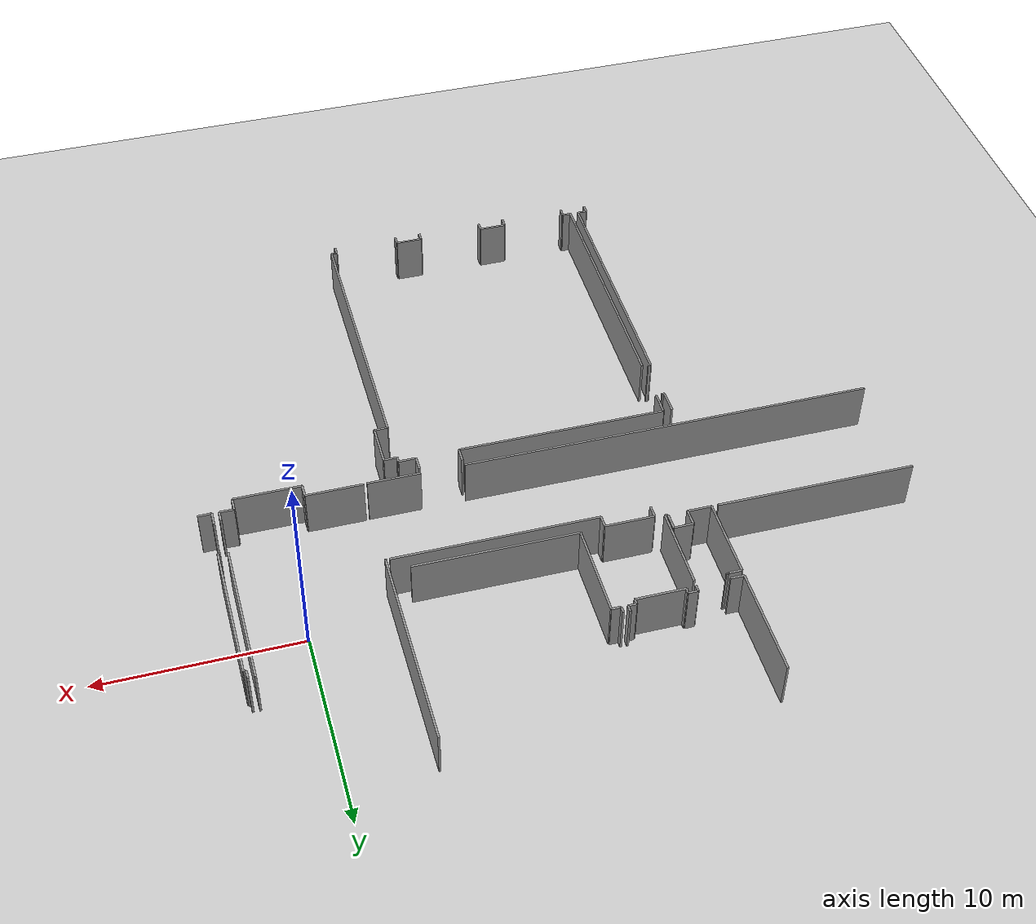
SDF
<sdf version="1.6">
 <world name="default">
  <model name="ground_plane">
   <static>1</static>
   <link name="link">
    <collision name="collision">
     <geometry><plane><normal>0 0 1</normal><size>100 100</size></plane></geometry>
     <surface><friction><ode><mu>100</mu><mu2>50</mu2></ode></friction></surface>
    </collision>
    <visual name="visual">
     <cast_shadows>0</cast_shadows>
     <geometry><plane><normal>0 0 1</normal><size>100 100</size></plane></geometry>
     <material>
      <script><uri>file://media/materials/scripts/gazebo.material</uri><name>Gazebo/Grey</name></script>
     </material>
    </visual>
   </link>
  </model>
  <model name="0510032196_A_40_1_104">
   <static>1</static>
   <link name="Wall_181">
    <collision name="Wall_181_Collision">
     <geometry><box><size>0.696329622287 0.1 2.5</size></box></geometry>
     <pose>0.348164811143 0 1.25 0 0 0</pose>
    </collision>
    <visual name="Wall_181_Visual">
     <pose>0.348164811143 0 1.25 0 0 0</pose>
     <geometry><box><size>0.696329622287 0.1 2.5</size></box></geometry>
     <material>
      <script><uri>file://media/materials/scripts/gazebo.material</uri><name>Gazebo/Grey</name></script>
      <ambient>1 1 1 1</ambient>
     </material>
    </visual>
    <pose>68.592979513 -30.8386711403 0 0 0 1.57079632679</pose>
   </link>
   <link name="Wall_182">
    <collision name="Wall_182_Collision">
     <geometry><box><size>0.120100655788 0.1 2.5</size></box></geometry>
     <pose>0.0600503278939 0 1.25 0 0 0</pose>
    </collision>
    <visual name="Wall_182_Visual">
     <pose>0.0600503278939 0 1.25 0 0 0</pose>
     <geometry><box><size>0.120100655788 0.1 2.5</size></box></geometry>
     <material>
      <script><uri>file://media/materials/scripts/gazebo.material</uri><name>Gazebo/Grey</name></script>
      <ambient>1 1 1 1</ambient>
     </material>
    </visual>
    <pose>68.592979513 -28.2883432464 0 0 0 0.0</pose>
   </link>
   <link name="Wall_183">
    <collision name="Wall_183_Collision">
     <geometry><box><size>6.95389151543 0.1 2.5</size></box></geometry>
     <pose>3.47694575771 0 1.25 0 0 0</pose>
    </collision>
    <visual name="Wall_183_Visual">
     <pose>3.47694575771 0 1.25 0 0 0</pose>
     <geometry><box><size>6.95389151543 0.1 2.5</size></box></geometry>
     <material>
      <script><uri>file://media/materials/scripts/gazebo.material</uri><name>Gazebo/Grey</name></script>
      <ambient>1 1 1 1</ambient>
     </material>
    </visual>
    <pose>68.7130801688 -28.2883432464 0 0 0 1.57079632679</pose>
   </link>
   <link name="Wall_184">
    <collision name="Wall_184_Collision">
     <geometry><box><size>0.131157541559 0.1 2.5</size></box></geometry>
     <pose>0.0655787707793 0 1.25 0 0 0</pose>
    </collision>
    <visual name="Wall_184_Visual">
     <pose>0.0655787707793 0 1.25 0 0 0</pose>
     <geometry><box><size>0.131157541559 0.1 2.5</size></box></geometry>
     <material>
      <script><uri>file://media/materials/scripts/gazebo.material</uri><name>Gazebo/Grey</name></script>
      <ambient>1 1 1 1</ambient>
     </material>
    </visual>
    <pose>68.7130801688 -21.334451731 0 0 0 3.14159265359</pose>
   </link>
   <link name="Wall_185">
    <collision name="Wall_185_Collision">
     <geometry><box><size>0.419907478013 0.1 2.5</size></box></geometry>
     <pose>0.209953739007 0 1.25 0 0 0</pose>
    </collision>
    <visual name="Wall_185_Visual">
     <pose>0.209953739007 0 1.25 0 0 0</pose>
     <geometry><box><size>0.419907478013 0.1 2.5</size></box></geometry>
     <material>
      <script><uri>file://media/materials/scripts/gazebo.material</uri><name>Gazebo/Grey</name></script>
      <ambient>1 1 1 1</ambient>
     </material>
    </visual>
    <pose>68.5819226272 -21.334451731 0 0 0 1.57079632679</pose>
   </link>
   <link name="Wall_200">
    <collision name="Wall_200_Collision">
     <geometry><box><size>0.680181179536 0.1 2.5</size></box></geometry>
     <pose>0.340090589768 0 1.25 0 0 0</pose>
    </collision>
    <visual name="Wall_200_Visual">
     <pose>0.340090589768 0 1.25 0 0 0</pose>
     <geometry><box><size>0.680181179536 0.1 2.5</size></box></geometry>
     <material>
      <script><uri>file://media/materials/scripts/gazebo.material</uri><name>Gazebo/Grey</name></script>
      <ambient>1 1 1 1</ambient>
     </material>
    </visual>
    <pose>69.2729144426 -30.8203700879 0 0 0 -3.11468326279</pose>
   </link>
   <link name="Wall_201">
    <collision name="Wall_201_Collision">
     <geometry><box><size>4.71391896701 0.1 2.5</size></box></geometry>
     <pose>2.3569594835 0 1.25 0 0 0</pose>
    </collision>
    <visual name="Wall_201_Visual">
     <pose>2.3569594835 0 1.25 0 0 0</pose>
     <geometry><box><size>4.71391896701 0.1 2.5</size></box></geometry>
     <material>
      <script><uri>file://media/materials/scripts/gazebo.material</uri><name>Gazebo/Grey</name></script>
      <ambient>1 1 1 1</ambient>
     </material>
    </visual>
    <pose>52.3354176198 -25.2558334604 0 0 0 1.57079632679</pose>
   </link>
   <link name="Wall_202">
    <collision name="Wall_202_Collision">
     <geometry><box><size>0.464643383661 0.1 2.5</size></box></geometry>
     <pose>0.232321691831 0 1.25 0 0 0</pose>
    </collision>
    <visual name="Wall_202_Visual">
     <pose>0.232321691831 0 1.25 0 0 0</pose>
     <geometry><box><size>0.464643383661 0.1 2.5</size></box></geometry>
     <material>
      <script><uri>file://media/materials/scripts/gazebo.material</uri><name>Gazebo/Grey</name></script>
      <ambient>1 1 1 1</ambient>
     </material>
    </visual>
    <pose>52.3354176198 -20.5419144934 0 0 0 3.14159265359</pose>
   </link>
   <link name="Wall_203">
    <collision name="Wall_203_Collision">
     <geometry><box><size>0.317472421331 0.1 2.5</size></box></geometry>
     <pose>0.158736210665 0 1.25 0 0 0</pose>
    </collision>
    <visual name="Wall_203_Visual">
     <pose>0.158736210665 0 1.25 0 0 0</pose>
     <geometry><box><size>0.317472421331 0.1 2.5</size></box></geometry>
     <material>
      <script><uri>file://media/materials/scripts/gazebo.material</uri><name>Gazebo/Grey</name></script>
      <ambient>1 1 1 1</ambient>
     </material>
    </visual>
    <pose>51.8707742362 -20.5419144934 0 0 0 1.57079632679</pose>
   </link>
   <link name="Wall_211">
    <collision name="Wall_211_Collision">
     <geometry><box><size>8.0505723314 0.1 2.5</size></box></geometry>
     <pose>4.0252861657 0 1.25 0 0 0</pose>
    </collision>
    <visual name="Wall_211_Visual">
     <pose>4.0252861657 0 1.25 0 0 0</pose>
     <geometry><box><size>8.0505723314 0.1 2.5</size></box></geometry>
     <material>
      <script><uri>file://media/materials/scripts/gazebo.material</uri><name>Gazebo/Grey</name></script>
      <ambient>1 1 1 1</ambient>
     </material>
    </visual>
    <pose>60.3859742769 -25.2717197906 0 0 0 3.13961933545</pose>
   </link>
   <link name="Wall_212">
    <collision name="Wall_212_Collision">
     <geometry><box><size>5.4279141884 0.1 2.5</size></box></geometry>
     <pose>2.7139570942 0 1.25 0 0 0</pose>
    </collision>
    <visual name="Wall_212_Visual">
     <pose>2.7139570942 0 1.25 0 0 0</pose>
     <geometry><box><size>5.4279141884 0.1 2.5</size></box></geometry>
     <material>
      <script><uri>file://media/materials/scripts/gazebo.material</uri><name>Gazebo/Grey</name></script>
      <ambient>1 1 1 1</ambient>
     </material>
    </visual>
    <pose>45.9447918255 -20.8640892685 0 0 0 1.57079632679</pose>
   </link>
   <link name="Wall_216">
    <collision name="Wall_216_Collision">
     <geometry><box><size>0.328529307102 0.1 2.5</size></box></geometry>
     <pose>0.164264653551 0 1.25 0 0 0</pose>
    </collision>
    <visual name="Wall_216_Visual">
     <pose>0.164264653551 0 1.25 0 0 0</pose>
     <geometry><box><size>0.328529307102 0.1 2.5</size></box></geometry>
     <material>
      <script><uri>file://media/materials/scripts/gazebo.material</uri><name>Gazebo/Grey</name></script>
      <ambient>1 1 1 1</ambient>
     </material>
    </visual>
    <pose>51.5517767272 -20.1982614 0 0 0 -1.57079632679</pose>
   </link>
   <link name="Wall_217">
    <collision name="Wall_217_Collision">
     <geometry><box><size>0.398302069036 0.1 2.5</size></box></geometry>
     <pose>0.199151034518 0 1.25 0 0 0</pose>
    </collision>
    <visual name="Wall_217_Visual">
     <pose>0.199151034518 0 1.25 0 0 0</pose>
     <geometry><box><size>0.398302069036 0.1 2.5</size></box></geometry>
     <material>
      <script><uri>file://media/materials/scripts/gazebo.material</uri><name>Gazebo/Grey</name></script>
      <ambient>1 1 1 1</ambient>
     </material>
    </visual>
    <pose>51.5517767272 -20.5267907071 0 0 0 3.14159265359</pose>
   </link>
   <link name="Wall_218">
    <collision name="Wall_218_Collision">
     <geometry><box><size>0.00355853794926 0.1 2.5</size></box></geometry>
     <pose>0.00177926897463 0 1.25 0 0 0</pose>
    </collision>
    <visual name="Wall_218_Visual">
     <pose>0.00177926897463 0 1.25 0 0 0</pose>
     <geometry><box><size>0.00355853794926 0.1 2.5</size></box></geometry>
     <material>
      <script><uri>file://media/materials/scripts/gazebo.material</uri><name>Gazebo/Grey</name></script>
      <ambient>1 1 1 1</ambient>
     </material>
    </visual>
    <pose>51.1534746581 -20.5267907071 0 0 0 3.14159265359</pose>
   </link>
   <link name="Wall_219">
    <collision name="Wall_219_Collision">
     <geometry><box><size>0.279853591582 0.1 2.5</size></box></geometry>
     <pose>0.139926795791 0 1.25 0 0 0</pose>
    </collision>
    <visual name="Wall_219_Visual">
     <pose>0.139926795791 0 1.25 0 0 0</pose>
     <geometry><box><size>0.279853591582 0.1 2.5</size></box></geometry>
     <material>
      <script><uri>file://media/materials/scripts/gazebo.material</uri><name>Gazebo/Grey</name></script>
      <ambient>1 1 1 1</ambient>
     </material>
    </visual>
    <pose>51.1499161202 -20.5267907071 0 0 0 -1.57079632679</pose>
   </link>
   <link name="Wall_220">
    <collision name="Wall_220_Collision">
     <geometry><box><size>2.42361852473 0.1 2.5</size></box></geometry>
     <pose>1.21180926237 0 1.25 0 0 0</pose>
    </collision>
    <visual name="Wall_220_Visual">
     <pose>1.21180926237 0 1.25 0 0 0</pose>
     <geometry><box><size>2.42361852473 0.1 2.5</size></box></geometry>
     <material>
      <script><uri>file://media/materials/scripts/gazebo.material</uri><name>Gazebo/Grey</name></script>
      <ambient>1 1 1 1</ambient>
     </material>
    </visual>
    <pose>51.1499161202 -20.8066442987 0 0 0 3.14159265359</pose>
   </link>
   <link name="Wall_221">
    <collision name="Wall_221_Collision">
     <geometry><box><size>0.261933811194 0.1 2.5</size></box></geometry>
     <pose>0.130966905597 0 1.25 0 0 0</pose>
    </collision>
    <visual name="Wall_221_Visual">
     <pose>0.130966905597 0 1.25 0 0 0</pose>
     <geometry><box><size>0.261933811194 0.1 2.5</size></box></geometry>
     <material>
      <script><uri>file://media/materials/scripts/gazebo.material</uri><name>Gazebo/Grey</name></script>
      <ambient>1 1 1 1</ambient>
     </material>
    </visual>
    <pose>48.7262975954 -20.8066442987 0 0 0 1.57079632679</pose>
   </link>
   <link name="Wall_222">
    <collision name="Wall_222_Collision">
     <geometry><box><size>0.472650094047 0.1 2.5</size></box></geometry>
     <pose>0.236325047024 0 1.25 0 0 0</pose>
    </collision>
    <visual name="Wall_222_Visual">
     <pose>0.236325047024 0 1.25 0 0 0</pose>
     <geometry><box><size>0.472650094047 0.1 2.5</size></box></geometry>
     <material>
      <script><uri>file://media/materials/scripts/gazebo.material</uri><name>Gazebo/Grey</name></script>
      <ambient>1 1 1 1</ambient>
     </material>
    </visual>
    <pose>48.7262975954 -20.5447104875 0 0 0 3.14159265359</pose>
   </link>
   <link name="Wall_223">
    <collision name="Wall_223_Collision">
     <geometry><box><size>0.318997509023 0.1 2.5</size></box></geometry>
     <pose>0.159498754512 0 1.25 0 0 0</pose>
    </collision>
    <visual name="Wall_223_Visual">
     <pose>0.159498754512 0 1.25 0 0 0</pose>
     <geometry><box><size>0.318997509023 0.1 2.5</size></box></geometry>
     <material>
      <script><uri>file://media/materials/scripts/gazebo.material</uri><name>Gazebo/Grey</name></script>
      <ambient>1 1 1 1</ambient>
     </material>
    </visual>
    <pose>48.2536475014 -20.5447104875 0 0 0 -1.57079632679</pose>
   </link>
   <link name="Wall_224">
    <collision name="Wall_224_Collision">
     <geometry><box><size>0.659219265359 0.1 2.5</size></box></geometry>
     <pose>0.32960963268 0 1.25 0 0 0</pose>
    </collision>
    <visual name="Wall_224_Visual">
     <pose>0.32960963268 0 1.25 0 0 0</pose>
     <geometry><box><size>0.659219265359 0.1 2.5</size></box></geometry>
     <material>
      <script><uri>file://media/materials/scripts/gazebo.material</uri><name>Gazebo/Grey</name></script>
      <ambient>1 1 1 1</ambient>
     </material>
    </visual>
    <pose>46.6040109806 -20.8637079965 0 0 0 -3.14101428465</pose>
   </link>
   <link name="Wall_225">
    <collision name="Wall_225_Collision">
     <geometry><box><size>4.07287377358 0.1 2.5</size></box></geometry>
     <pose>2.03643688679 0 1.25 0 0 0</pose>
    </collision>
    <visual name="Wall_225_Visual">
     <pose>2.03643688679 0 1.25 0 0 0</pose>
     <geometry><box><size>4.07287377358 0.1 2.5</size></box></geometry>
     <material>
      <script><uri>file://media/materials/scripts/gazebo.material</uri><name>Gazebo/Grey</name></script>
      <ambient>1 1 1 1</ambient>
     </material>
    </visual>
    <pose>45.9342433023 -25.259519089 0 0 0 1.57079632679</pose>
   </link>
   <link name="Wall_226">
    <collision name="Wall_226_Collision">
     <geometry><box><size>0.671801128565 0.1 2.5</size></box></geometry>
     <pose>0.335900564282 0 1.25 0 0 0</pose>
    </collision>
    <visual name="Wall_226_Visual">
     <pose>0.335900564282 0 1.25 0 0 0</pose>
     <geometry><box><size>0.671801128565 0.1 2.5</size></box></geometry>
     <material>
      <script><uri>file://media/materials/scripts/gazebo.material</uri><name>Gazebo/Grey</name></script>
      <ambient>1 1 1 1</ambient>
     </material>
    </visual>
    <pose>45.9342433023 -21.1866453154 0 0 0 0.0</pose>
   </link>
   <link name="Wall_227">
    <collision name="Wall_227_Collision">
     <geometry><box><size>0.0303746632098 0.1 2.5</size></box></geometry>
     <pose>0.0151873316049 0 1.25 0 0 0</pose>
    </collision>
    <visual name="Wall_227_Visual">
     <pose>0.0151873316049 0 1.25 0 0 0</pose>
     <geometry><box><size>0.0303746632098 0.1 2.5</size></box></geometry>
     <material>
      <script><uri>file://media/materials/scripts/gazebo.material</uri><name>Gazebo/Grey</name></script>
      <ambient>1 1 1 1</ambient>
     </material>
    </visual>
    <pose>46.6060444309 -21.1866453154 0 0 0 1.57079632679</pose>
   </link>
   <link name="Wall_228">
    <collision name="Wall_228_Collision">
     <geometry><box><size>0.0913781709115 0.1 2.5</size></box></geometry>
     <pose>0.0456890854557 0 1.25 0 0 0</pose>
    </collision>
    <visual name="Wall_228_Visual">
     <pose>0.0456890854557 0 1.25 0 0 0</pose>
     <geometry><box><size>0.0913781709115 0.1 2.5</size></box></geometry>
     <material>
      <script><uri>file://media/materials/scripts/gazebo.material</uri><name>Gazebo/Grey</name></script>
      <ambient>1 1 1 1</ambient>
     </material>
    </visual>
    <pose>46.6060444309 -21.1562706522 0 0 0 0.0</pose>
   </link>
   <link name="Wall_229">
    <collision name="Wall_229_Collision">
     <geometry><box><size>4.1094758782 0.1 2.5</size></box></geometry>
     <pose>2.0547379391 0 1.25 0 0 0</pose>
    </collision>
    <visual name="Wall_229_Visual">
     <pose>2.0547379391 0 1.25 0 0 0</pose>
     <geometry><box><size>4.1094758782 0.1 2.5</size></box></geometry>
     <material>
      <script><uri>file://media/materials/scripts/gazebo.material</uri><name>Gazebo/Grey</name></script>
      <ambient>1 1 1 1</ambient>
     </material>
    </visual>
    <pose>48.2292460983 -21.1562706522 0 0 0 -1.57079632679</pose>
   </link>
   <link name="Wall_230">
    <collision name="Wall_230_Collision">
     <geometry><box><size>0.146662599766 0.1 2.5</size></box></geometry>
     <pose>0.0733312998831 0 1.25 0 0 0</pose>
    </collision>
    <visual name="Wall_230_Visual">
     <pose>0.0733312998831 0 1.25 0 0 0</pose>
     <geometry><box><size>0.146662599766 0.1 2.5</size></box></geometry>
     <material>
      <script><uri>file://media/materials/scripts/gazebo.material</uri><name>Gazebo/Grey</name></script>
      <ambient>1 1 1 1</ambient>
     </material>
    </visual>
    <pose>48.2292460983 -25.2657465304 0 0 0 3.14159265359</pose>
   </link>
   <link name="Wall_231">
    <collision name="Wall_231_Collision">
     <geometry><box><size>0.827741345127 0.1 2.5</size></box></geometry>
     <pose>0.413870672564 0 1.25 0 0 0</pose>
    </collision>
    <visual name="Wall_231_Visual">
     <pose>0.413870672564 0 1.25 0 0 0</pose>
     <geometry><box><size>0.827741345127 0.1 2.5</size></box></geometry>
     <material>
      <script><uri>file://media/materials/scripts/gazebo.material</uri><name>Gazebo/Grey</name></script>
      <ambient>1 1 1 1</ambient>
     </material>
    </visual>
    <pose>48.0825834986 -25.2657465304 0 0 0 1.57079632679</pose>
   </link>
   <link name="Wall_232">
    <collision name="Wall_232_Collision">
     <geometry><box><size>0.960423974379 0.1 2.5</size></box></geometry>
     <pose>0.480211987189 0 1.25 0 0 0</pose>
    </collision>
    <visual name="Wall_232_Visual">
     <pose>0.480211987189 0 1.25 0 0 0</pose>
     <geometry><box><size>0.960423974379 0.1 2.5</size></box></geometry>
     <material>
      <script><uri>file://media/materials/scripts/gazebo.material</uri><name>Gazebo/Grey</name></script>
      <ambient>1 1 1 1</ambient>
     </material>
    </visual>
    <pose>48.0825834986 -24.4380051853 0 0 0 3.14159265359</pose>
   </link>
   <link name="Wall_233">
    <collision name="Wall_233_Collision">
     <geometry><box><size>0.827741345127 0.1 2.5</size></box></geometry>
     <pose>0.413870672564 0 1.25 0 0 0</pose>
    </collision>
    <visual name="Wall_233_Visual">
     <pose>0.413870672564 0 1.25 0 0 0</pose>
     <geometry><box><size>0.827741345127 0.1 2.5</size></box></geometry>
     <material>
      <script><uri>file://media/materials/scripts/gazebo.material</uri><name>Gazebo/Grey</name></script>
      <ambient>1 1 1 1</ambient>
     </material>
    </visual>
    <pose>47.1221595242 -24.4380051853 0 0 0 -1.57079632679</pose>
   </link>
   <link name="Wall_234">
    <collision name="Wall_234_Collision">
     <geometry><box><size>1.18793254487 0.1 2.5</size></box></geometry>
     <pose>0.593966272435 0 1.25 0 0 0</pose>
    </collision>
    <visual name="Wall_234_Visual">
     <pose>0.593966272435 0 1.25 0 0 0</pose>
     <geometry><box><size>1.18793254487 0.1 2.5</size></box></geometry>
     <material>
      <script><uri>file://media/materials/scripts/gazebo.material</uri><name>Gazebo/Grey</name></script>
      <ambient>1 1 1 1</ambient>
     </material>
    </visual>
    <pose>47.1221595242 -25.2657465304 0 0 0 3.13635037787</pose>
   </link>
   <link name="Wall_235">
    <collision name="Wall_235_Collision">
     <geometry><box><size>12.6715723654 0.1 2.5</size></box></geometry>
     <pose>6.33578618271 0 1.25 0 0 0</pose>
    </collision>
    <visual name="Wall_235_Visual">
     <pose>6.33578618271 0 1.25 0 0 0</pose>
     <geometry><box><size>12.6715723654 0.1 2.5</size></box></geometry>
     <material>
      <script><uri>file://media/materials/scripts/gazebo.material</uri><name>Gazebo/Grey</name></script>
      <ambient>1 1 1 1</ambient>
     </material>
    </visual>
    <pose>46.074932642 -47.9340145392 0 0 0 1.57079632679</pose>
   </link>
   <link name="Wall_236">
    <collision name="Wall_236_Collision">
     <geometry><box><size>1.15474556454 0.1 2.5</size></box></geometry>
     <pose>0.577372782268 0 1.25 0 0 0</pose>
    </collision>
    <visual name="Wall_236_Visual">
     <pose>0.577372782268 0 1.25 0 0 0</pose>
     <geometry><box><size>1.15474556454 0.1 2.5</size></box></geometry>
     <material>
      <script><uri>file://media/materials/scripts/gazebo.material</uri><name>Gazebo/Grey</name></script>
      <ambient>1 1 1 1</ambient>
     </material>
    </visual>
    <pose>46.074932642 -33.0551319201 0 0 0 1.57079632679</pose>
   </link>
   <link name="Wall_237">
    <collision name="Wall_237_Collision">
     <geometry><box><size>10.3798739261 0.1 2.5</size></box></geometry>
     <pose>5.18993696304 0 1.25 0 0 0</pose>
    </collision>
    <visual name="Wall_237_Visual">
     <pose>5.18993696304 0 1.25 0 0 0</pose>
     <geometry><box><size>10.3798739261 0.1 2.5</size></box></geometry>
     <material>
      <script><uri>file://media/materials/scripts/gazebo.material</uri><name>Gazebo/Grey</name></script>
      <ambient>1 1 1 1</ambient>
     </material>
    </visual>
    <pose>46.074932642 -31.9003863555 0 0 0 0.0</pose>
   </link>
   <link name="Wall_238">
    <collision name="Wall_238_Collision">
     <geometry><box><size>0.720349753444 0.1 2.5</size></box></geometry>
     <pose>0.360174876722 0 1.25 0 0 0</pose>
    </collision>
    <visual name="Wall_238_Visual">
     <pose>0.360174876722 0 1.25 0 0 0</pose>
     <geometry><box><size>0.720349753444 0.1 2.5</size></box></geometry>
     <material>
      <script><uri>file://media/materials/scripts/gazebo.material</uri><name>Gazebo/Grey</name></script>
      <ambient>1 1 1 1</ambient>
     </material>
    </visual>
    <pose>56.454806568 -31.9003863555 0 0 0 1.57079632679</pose>
   </link>
   <link name="Wall_239">
    <collision name="Wall_239_Collision">
     <geometry><box><size>0.697854709979 0.1 2.5</size></box></geometry>
     <pose>0.34892735499 0 1.25 0 0 0</pose>
    </collision>
    <visual name="Wall_239_Visual">
     <pose>0.34892735499 0 1.25 0 0 0</pose>
     <geometry><box><size>0.697854709979 0.1 2.5</size></box></geometry>
     <material>
      <script><uri>file://media/materials/scripts/gazebo.material</uri><name>Gazebo/Grey</name></script>
      <ambient>1 1 1 1</ambient>
     </material>
    </visual>
    <pose>58.5660362971 -31.1800366021 0 0 0 -1.57079632679</pose>
   </link>
   <link name="Wall_240">
    <collision name="Wall_240_Collision">
     <geometry><box><size>0.868029078339 0.1 2.5</size></box></geometry>
     <pose>0.434014539169 0 1.25 0 0 0</pose>
    </collision>
    <visual name="Wall_240_Visual">
     <pose>0.434014539169 0 1.25 0 0 0</pose>
     <geometry><box><size>0.868029078339 0.1 2.5</size></box></geometry>
     <material>
      <script><uri>file://media/materials/scripts/gazebo.material</uri><name>Gazebo/Grey</name></script>
      <ambient>1 1 1 1</ambient>
     </material>
    </visual>
    <pose>58.5660362971 -31.8778913121 0 0 0 0.0</pose>
   </link>
   <link name="Wall_241">
    <collision name="Wall_241_Collision">
     <geometry><box><size>0.276167962991 0.1 2.5</size></box></geometry>
     <pose>0.138083981496 0 1.25 0 0 0</pose>
    </collision>
    <visual name="Wall_241_Visual">
     <pose>0.138083981496 0 1.25 0 0 0</pose>
     <geometry><box><size>0.276167962991 0.1 2.5</size></box></geometry>
     <material>
      <script><uri>file://media/materials/scripts/gazebo.material</uri><name>Gazebo/Grey</name></script>
      <ambient>1 1 1 1</ambient>
     </material>
    </visual>
    <pose>59.4340653754 -31.8778913121 0 0 0 -1.57079632679</pose>
   </link>
   <link name="Wall_242">
    <collision name="Wall_242_Collision">
     <geometry><box><size>0.660362970871 0.1 2.5</size></box></geometry>
     <pose>0.330181485435 0 1.25 0 0 0</pose>
    </collision>
    <visual name="Wall_242_Visual">
     <pose>0.330181485435 0 1.25 0 0 0</pose>
     <geometry><box><size>0.660362970871 0.1 2.5</size></box></geometry>
     <material>
      <script><uri>file://media/materials/scripts/gazebo.material</uri><name>Gazebo/Grey</name></script>
      <ambient>1 1 1 1</ambient>
     </material>
    </visual>
    <pose>59.4340653754 -32.1540592751 0 0 0 0.0</pose>
   </link>
   <link name="Wall_243">
    <collision name="Wall_243_Collision">
     <geometry><box><size>2.0968684866 0.1 2.5</size></box></geometry>
     <pose>1.0484342433 0 1.25 0 0 0</pose>
    </collision>
    <visual name="Wall_243_Visual">
     <pose>1.0484342433 0 1.25 0 0 0</pose>
     <geometry><box><size>2.0968684866 0.1 2.5</size></box></geometry>
     <material>
      <script><uri>file://media/materials/scripts/gazebo.material</uri><name>Gazebo/Grey</name></script>
      <ambient>1 1 1 1</ambient>
     </material>
    </visual>
    <pose>60.0944283463 -32.1540592751 0 0 0 -1.57079632679</pose>
   </link>
   <link name="Wall_244">
    <collision name="Wall_244_Collision">
     <geometry><box><size>0.650831172792 0.1 2.5</size></box></geometry>
     <pose>0.325415586396 0 1.25 0 0 0</pose>
    </collision>
    <visual name="Wall_244_Visual">
     <pose>0.325415586396 0 1.25 0 0 0</pose>
     <geometry><box><size>0.650831172792 0.1 2.5</size></box></geometry>
     <material>
      <script><uri>file://media/materials/scripts/gazebo.material</uri><name>Gazebo/Grey</name></script>
      <ambient>1 1 1 1</ambient>
     </material>
    </visual>
    <pose>60.0944283463 -34.2509277617 0 0 0 3.14159265359</pose>
   </link>
   <link name="Wall_245">
    <collision name="Wall_245_Collision">
     <geometry><box><size>13.6649128158 0.1 2.5</size></box></geometry>
     <pose>6.83245640791 0 1.25 0 0 0</pose>
    </collision>
    <visual name="Wall_245_Visual">
     <pose>6.83245640791 0 1.25 0 0 0</pose>
     <geometry><box><size>13.6649128158 0.1 2.5</size></box></geometry>
     <material>
      <script><uri>file://media/materials/scripts/gazebo.material</uri><name>Gazebo/Grey</name></script>
      <ambient>1 1 1 1</ambient>
     </material>
    </visual>
    <pose>59.4435971735 -34.2509277617 0 0 0 -1.57079632679</pose>
   </link>
   <link name="Wall_246">
    <collision name="Wall_246_Collision">
     <geometry><box><size>0.275532509786 0.1 2.5</size></box></geometry>
     <pose>0.137766254893 0 1.25 0 0 0</pose>
    </collision>
    <visual name="Wall_246_Visual">
     <pose>0.137766254893 0 1.25 0 0 0</pose>
     <geometry><box><size>0.275532509786 0.1 2.5</size></box></geometry>
     <material>
      <script><uri>file://media/materials/scripts/gazebo.material</uri><name>Gazebo/Grey</name></script>
      <ambient>1 1 1 1</ambient>
     </material>
    </visual>
    <pose>59.4435971735 -47.9158405775 0 0 0 3.14159265359</pose>
   </link>
   <link name="Wall_247">
    <collision name="Wall_247_Collision">
     <geometry><box><size>0.451680138275 0.1 2.5</size></box></geometry>
     <pose>0.225840069137 0 1.25 0 0 0</pose>
    </collision>
    <visual name="Wall_247_Visual">
     <pose>0.225840069137 0 1.25 0 0 0</pose>
     <geometry><box><size>0.451680138275 0.1 2.5</size></box></geometry>
     <material>
      <script><uri>file://media/materials/scripts/gazebo.material</uri><name>Gazebo/Grey</name></script>
      <ambient>1 1 1 1</ambient>
     </material>
    </visual>
    <pose>59.1680646637 -47.9158405775 0 0 0 -1.57079632679</pose>
   </link>
   <link name="Wall_248">
    <collision name="Wall_248_Collision">
     <geometry><box><size>0.443037974684 0.1 2.5</size></box></geometry>
     <pose>0.221518987342 0 1.25 0 0 0</pose>
    </collision>
    <visual name="Wall_248_Visual">
     <pose>0.221518987342 0 1.25 0 0 0</pose>
     <geometry><box><size>0.443037974684 0.1 2.5</size></box></geometry>
     <material>
      <script><uri>file://media/materials/scripts/gazebo.material</uri><name>Gazebo/Grey</name></script>
      <ambient>1 1 1 1</ambient>
     </material>
    </visual>
    <pose>55.8419754969 -48.3675207158 0 0 0 1.57079632679</pose>
   </link>
   <link name="Wall_249">
    <collision name="Wall_249_Collision">
     <geometry><box><size>1.33330791521 0.1 2.5</size></box></geometry>
     <pose>0.666653957603 0 1.25 0 0 0</pose>
    </collision>
    <visual name="Wall_249_Visual">
     <pose>0.666653957603 0 1.25 0 0 0</pose>
     <geometry><box><size>1.33330791521 0.1 2.5</size></box></geometry>
     <material>
      <script><uri>file://media/materials/scripts/gazebo.material</uri><name>Gazebo/Grey</name></script>
      <ambient>1 1 1 1</ambient>
     </material>
    </visual>
    <pose>55.8419754969 -47.9244827411 0 0 0 3.14159265359</pose>
   </link>
   <link name="Wall_250">
    <collision name="Wall_250_Collision">
     <geometry><box><size>0.423338925322 0.1 2.5</size></box></geometry>
     <pose>0.211669462661 0 1.25 0 0 0</pose>
    </collision>
    <visual name="Wall_250_Visual">
     <pose>0.211669462661 0 1.25 0 0 0</pose>
     <geometry><box><size>0.423338925322 0.1 2.5</size></box></geometry>
     <material>
      <script><uri>file://media/materials/scripts/gazebo.material</uri><name>Gazebo/Grey</name></script>
      <ambient>1 1 1 1</ambient>
     </material>
    </visual>
    <pose>54.5086675817 -47.9244827411 0 0 0 -1.57079632679</pose>
   </link>
   <link name="Wall_251">
    <collision name="Wall_251_Collision">
     <geometry><box><size>0.442275430837 0.1 2.5</size></box></geometry>
     <pose>0.221137715419 0 1.25 0 0 0</pose>
    </collision>
    <visual name="Wall_251_Visual">
     <pose>0.221137715419 0 1.25 0 0 0</pose>
     <geometry><box><size>0.442275430837 0.1 2.5</size></box></geometry>
     <material>
      <script><uri>file://media/materials/scripts/gazebo.material</uri><name>Gazebo/Grey</name></script>
      <ambient>1 1 1 1</ambient>
     </material>
    </visual>
    <pose>51.1787656957 -48.3478216664 0 0 0 1.57079632679</pose>
   </link>
   <link name="Wall_252">
    <collision name="Wall_252_Collision">
     <geometry><box><size>1.35224442072 0.1 2.5</size></box></geometry>
     <pose>0.67612221036 0 1.25 0 0 0</pose>
    </collision>
    <visual name="Wall_252_Visual">
     <pose>0.67612221036 0 1.25 0 0 0</pose>
     <geometry><box><size>1.35224442072 0.1 2.5</size></box></geometry>
     <material>
      <script><uri>file://media/materials/scripts/gazebo.material</uri><name>Gazebo/Grey</name></script>
      <ambient>1 1 1 1</ambient>
     </material>
    </visual>
    <pose>51.1787656957 -47.9055462356 0 0 0 3.14159265359</pose>
   </link>
   <link name="Wall_253">
    <collision name="Wall_253_Collision">
     <geometry><box><size>0.461211936353 0.1 2.5</size></box></geometry>
     <pose>0.230605968177 0 1.25 0 0 0</pose>
    </collision>
    <visual name="Wall_253_Visual">
     <pose>0.230605968177 0 1.25 0 0 0</pose>
     <geometry><box><size>0.461211936353 0.1 2.5</size></box></geometry>
     <material>
      <script><uri>file://media/materials/scripts/gazebo.material</uri><name>Gazebo/Grey</name></script>
      <ambient>1 1 1 1</ambient>
     </material>
    </visual>
    <pose>49.826521275 -47.9055462356 0 0 0 -1.57079632679</pose>
   </link>
   <link name="Wall_254">
    <collision name="Wall_254_Collision">
     <geometry><box><size>0.435920898785 0.1 2.5</size></box></geometry>
     <pose>0.217960449392 0 1.25 0 0 0</pose>
    </collision>
    <visual name="Wall_254_Visual">
     <pose>0.217960449392 0 1.25 0 0 0</pose>
     <geometry><box><size>0.435920898785 0.1 2.5</size></box></geometry>
     <material>
      <script><uri>file://media/materials/scripts/gazebo.material</uri><name>Gazebo/Grey</name></script>
      <ambient>1 1 1 1</ambient>
     </material>
    </visual>
    <pose>46.502973921 -48.3667581719 0 0 0 1.57079632679</pose>
   </link>
   <link name="Wall_255">
    <collision name="Wall_255_Collision">
     <geometry><box><size>0.428053070987 0.1 2.5</size></box></geometry>
     <pose>0.214026535494 0 1.25 0 0 0</pose>
    </collision>
    <visual name="Wall_255_Visual">
     <pose>0.214026535494 0 1.25 0 0 0</pose>
     <geometry><box><size>0.428053070987 0.1 2.5</size></box></geometry>
     <material>
      <script><uri>file://media/materials/scripts/gazebo.material</uri><name>Gazebo/Grey</name></script>
      <ambient>1 1 1 1</ambient>
     </material>
    </visual>
    <pose>46.502973921 -47.9308372731 0 0 0 -3.13416998706</pose>
   </link>
   <link name="Wall_262">
    <collision name="Wall_262_Collision">
     <geometry><box><size>1.16897971633 0.1 2.5</size></box></geometry>
     <pose>0.584489858167 0 1.25 0 0 0</pose>
    </collision>
    <visual name="Wall_262_Visual">
     <pose>0.584489858167 0 1.25 0 0 0</pose>
     <geometry><box><size>1.16897971633 0.1 2.5</size></box></geometry>
     <material>
      <script><uri>file://media/materials/scripts/gazebo.material</uri><name>Gazebo/Grey</name></script>
      <ambient>1 1 1 1</ambient>
     </material>
    </visual>
    <pose>45.6423160998 -31.8789080372 0 0 0 -1.57079632679</pose>
   </link>
   <link name="Wall_263">
    <collision name="Wall_263_Collision">
     <geometry><box><size>0.138401708098 0.1 2.5</size></box></geometry>
     <pose>0.0692008540491 0 1.25 0 0 0</pose>
    </collision>
    <visual name="Wall_263_Visual">
     <pose>0.0692008540491 0 1.25 0 0 0</pose>
     <geometry><box><size>0.138401708098 0.1 2.5</size></box></geometry>
     <material>
      <script><uri>file://media/materials/scripts/gazebo.material</uri><name>Gazebo/Grey</name></script>
      <ambient>1 1 1 1</ambient>
     </material>
    </visual>
    <pose>45.6423160998 -33.0478877535 0 0 0 0.0</pose>
   </link>
   <link name="Wall_264">
    <collision name="Wall_264_Collision">
     <geometry><box><size>0.137130801688 0.1 2.5</size></box></geometry>
     <pose>0.0685654008439 0 1.25 0 0 0</pose>
    </collision>
    <visual name="Wall_264_Visual">
     <pose>0.0685654008439 0 1.25 0 0 0</pose>
     <geometry><box><size>0.137130801688 0.1 2.5</size></box></geometry>
     <material>
      <script><uri>file://media/materials/scripts/gazebo.material</uri><name>Gazebo/Grey</name></script>
      <ambient>1 1 1 1</ambient>
     </material>
    </visual>
    <pose>45.7807178079 -35.204997204 0 0 0 3.14159265359</pose>
   </link>
   <link name="Wall_265">
    <collision name="Wall_265_Collision">
     <geometry><box><size>12.7069035636 0.1 2.5</size></box></geometry>
     <pose>6.35345178181 0 1.25 0 0 0</pose>
    </collision>
    <visual name="Wall_265_Visual">
     <pose>6.35345178181 0 1.25 0 0 0</pose>
     <geometry><box><size>12.7069035636 0.1 2.5</size></box></geometry>
     <material>
      <script><uri>file://media/materials/scripts/gazebo.material</uri><name>Gazebo/Grey</name></script>
      <ambient>1 1 1 1</ambient>
     </material>
    </visual>
    <pose>45.6435870063 -35.204997204 0 0 0 -1.57079632679</pose>
   </link>
   <link name="Wall_266">
    <collision name="Wall_266_Collision">
     <geometry><box><size>0.466168471354 0.1 2.5</size></box></geometry>
     <pose>0.233084235677 0 1.25 0 0 0</pose>
    </collision>
    <visual name="Wall_266_Visual">
     <pose>0.233084235677 0 1.25 0 0 0</pose>
     <geometry><box><size>0.466168471354 0.1 2.5</size></box></geometry>
     <material>
      <script><uri>file://media/materials/scripts/gazebo.material</uri><name>Gazebo/Grey</name></script>
      <ambient>1 1 1 1</ambient>
     </material>
    </visual>
    <pose>45.6435870063 -47.9119007676 0 0 0 3.14159265359</pose>
   </link>
   <link name="Wall_267">
    <collision name="Wall_267_Collision">
     <geometry><box><size>0.428549641604 0.1 2.5</size></box></geometry>
     <pose>0.214274820802 0 1.25 0 0 0</pose>
    </collision>
    <visual name="Wall_267_Visual">
     <pose>0.214274820802 0 1.25 0 0 0</pose>
     <geometry><box><size>0.428549641604 0.1 2.5</size></box></geometry>
     <material>
      <script><uri>file://media/materials/scripts/gazebo.material</uri><name>Gazebo/Grey</name></script>
      <ambient>1 1 1 1</ambient>
     </material>
    </visual>
    <pose>45.1774185349 -47.9119007676 0 0 0 -1.57079632679</pose>
   </link>
   <link name="Wall_316">
    <collision name="Wall_316_Collision">
     <geometry><box><size>10.1612780235 0.1 2.5</size></box></geometry>
     <pose>5.08063901174 0 1.25 0 0 0</pose>
    </collision>
    <visual name="Wall_316_Visual">
     <pose>5.08063901174 0 1.25 0 0 0</pose>
     <geometry><box><size>10.1612780235 0.1 2.5</size></box></geometry>
     <material>
      <script><uri>file://media/materials/scripts/gazebo.material</uri><name>Gazebo/Grey</name></script>
      <ambient>1 1 1 1</ambient>
     </material>
    </visual>
    <pose>61.3922779727 -25.9320827614 0 0 0 1.57079632679</pose>
   </link>
   <link name="Wall_323">
    <collision name="Wall_323_Collision">
     <geometry><box><size>7.34749123075 0.1 2.5</size></box></geometry>
     <pose>3.67374561537 0 1.25 0 0 0</pose>
    </collision>
    <visual name="Wall_323_Visual">
     <pose>3.67374561537 0 1.25 0 0 0</pose>
     <geometry><box><size>7.34749123075 0.1 2.5</size></box></geometry>
     <material>
      <script><uri>file://media/materials/scripts/gazebo.material</uri><name>Gazebo/Grey</name></script>
      <ambient>1 1 1 1</ambient>
     </material>
    </visual>
    <pose>68.2486909664 -20.9122566214 0 0 0 -1.57079632679</pose>
   </link>
   <link name="Wall_324">
    <collision name="Wall_324_Collision">
     <geometry><box><size>0.572289156627 0.1 2.5</size></box></geometry>
     <pose>0.286144578313 0 1.25 0 0 0</pose>
    </collision>
    <visual name="Wall_324_Visual">
     <pose>0.286144578313 0 1.25 0 0 0</pose>
     <geometry><box><size>0.572289156627 0.1 2.5</size></box></geometry>
     <material>
      <script><uri>file://media/materials/scripts/gazebo.material</uri><name>Gazebo/Grey</name></script>
      <ambient>1 1 1 1</ambient>
     </material>
    </visual>
    <pose>68.2486909664 -30.2520207412 0 0 0 -1.57079632679</pose>
   </link>
   <link name="Wall_325">
    <collision name="Wall_325_Collision">
     <geometry><box><size>0.712470133699 0.1 2.5</size></box></geometry>
     <pose>0.35623506685 0 1.25 0 0 0</pose>
    </collision>
    <visual name="Wall_325_Visual">
     <pose>0.35623506685 0 1.25 0 0 0</pose>
     <geometry><box><size>0.712470133699 0.1 2.5</size></box></geometry>
     <material>
      <script><uri>file://media/materials/scripts/gazebo.material</uri><name>Gazebo/Grey</name></script>
      <ambient>1 1 1 1</ambient>
     </material>
    </visual>
    <pose>68.2486909664 -30.8243098978 0 0 0 3.14159265359</pose>
   </link>
   <link name="Wall_326">
    <collision name="Wall_326_Collision">
     <geometry><box><size>0.664556962025 0.1 2.5</size></box></geometry>
     <pose>0.332278481013 0 1.25 0 0 0</pose>
    </collision>
    <visual name="Wall_326_Visual">
     <pose>0.332278481013 0 1.25 0 0 0</pose>
     <geometry><box><size>0.664556962025 0.1 2.5</size></box></geometry>
     <material>
      <script><uri>file://media/materials/scripts/gazebo.material</uri><name>Gazebo/Grey</name></script>
      <ambient>1 1 1 1</ambient>
     </material>
    </visual>
    <pose>67.5362208327 -30.8243098978 0 0 0 -1.57079632679</pose>
   </link>
   <link name="Wall_327">
    <collision name="Wall_327_Collision">
     <geometry><box><size>3.34731330385 0.1 2.5</size></box></geometry>
     <pose>1.67365665192 0 1.25 0 0 0</pose>
    </collision>
    <visual name="Wall_327_Visual">
     <pose>1.67365665192 0 1.25 0 0 0</pose>
     <geometry><box><size>3.34731330385 0.1 2.5</size></box></geometry>
     <material>
      <script><uri>file://media/materials/scripts/gazebo.material</uri><name>Gazebo/Grey</name></script>
      <ambient>1 1 1 1</ambient>
     </material>
    </visual>
    <pose>67.5362208327 -31.4888668598 0 0 0 3.14159265359</pose>
   </link>
   <link name="Wall_328">
    <collision name="Wall_328_Collision">
     <geometry><box><size>0.650068628946 0.1 2.5</size></box></geometry>
     <pose>0.325034314473 0 1.25 0 0 0</pose>
    </collision>
    <visual name="Wall_328_Visual">
     <pose>0.325034314473 0 1.25 0 0 0</pose>
     <geometry><box><size>0.650068628946 0.1 2.5</size></box></geometry>
     <material>
      <script><uri>file://media/materials/scripts/gazebo.material</uri><name>Gazebo/Grey</name></script>
      <ambient>1 1 1 1</ambient>
     </material>
    </visual>
    <pose>64.1889075288 -31.4888668598 0 0 0 1.57079632679</pose>
   </link>
   <link name="Wall_329">
    <collision name="Wall_329_Collision">
     <geometry><box><size>2.83310457018 0.1 2.5</size></box></geometry>
     <pose>1.41655228509 0 1.25 0 0 0</pose>
    </collision>
    <visual name="Wall_329_Visual">
     <pose>1.41655228509 0 1.25 0 0 0</pose>
     <geometry><box><size>2.83310457018 0.1 2.5</size></box></geometry>
     <material>
      <script><uri>file://media/materials/scripts/gazebo.material</uri><name>Gazebo/Grey</name></script>
      <ambient>1 1 1 1</ambient>
     </material>
    </visual>
    <pose>64.1889075288 -30.8387982309 0 0 0 3.14159265359</pose>
   </link>
   <link name="Wall_330">
    <collision name="Wall_330_Collision">
     <geometry><box><size>0.061029185198 0.1 2.5</size></box></geometry>
     <pose>0.030514592599 0 1.25 0 0 0</pose>
    </collision>
    <visual name="Wall_330_Visual">
     <pose>0.030514592599 0 1.25 0 0 0</pose>
     <geometry><box><size>0.061029185198 0.1 2.5</size></box></geometry>
     <material>
      <script><uri>file://media/materials/scripts/gazebo.material</uri><name>Gazebo/Grey</name></script>
      <ambient>1 1 1 1</ambient>
     </material>
    </visual>
    <pose>61.3558029587 -25.9810126582 0 0 0 0.930210661636</pose>
   </link>
   <link name="Wall_335">
    <collision name="Wall_335_Collision">
     <geometry><box><size>9.83186082001 0.1 2.5</size></box></geometry>
     <pose>4.91593041 0 1.25 0 0 0</pose>
    </collision>
    <visual name="Wall_335_Visual">
     <pose>4.91593041 0 1.25 0 0 0</pose>
     <geometry><box><size>9.83186082001 0.1 2.5</size></box></geometry>
     <material>
      <script><uri>file://media/materials/scripts/gazebo.material</uri><name>Gazebo/Grey</name></script>
      <ambient>1 1 1 1</ambient>
     </material>
    </visual>
    <pose>45.6133394337 -25.2635859895 0 0 0 3.1409980388</pose>
   </link>
   <link name="Wall_367">
    <collision name="Wall_367_Collision">
     <geometry><box><size>0.598469828682 0.1 2.5</size></box></geometry>
     <pose>0.299234914341 0 1.25 0 0 0</pose>
    </collision>
    <visual name="Wall_367_Visual">
     <pose>0.299234914341 0 1.25 0 0 0</pose>
     <geometry><box><size>0.598469828682 0.1 2.5</size></box></geometry>
     <material>
      <script><uri>file://media/materials/scripts/gazebo.material</uri><name>Gazebo/Grey</name></script>
      <ambient>1 1 1 1</ambient>
     </material>
    </visual>
    <pose>48.7124447156 -25.9503838137 0 0 0 1.57079632679</pose>
   </link>
   <link name="Wall_368">
    <collision name="Wall_368_Collision">
     <geometry><box><size>2.42171216512 0.1 2.5</size></box></geometry>
     <pose>1.21085608256 0 1.25 0 0 0</pose>
    </collision>
    <visual name="Wall_368_Visual">
     <pose>1.21085608256 0 1.25 0 0 0</pose>
     <geometry><box><size>2.42171216512 0.1 2.5</size></box></geometry>
     <material>
      <script><uri>file://media/materials/scripts/gazebo.material</uri><name>Gazebo/Grey</name></script>
      <ambient>1 1 1 1</ambient>
     </material>
    </visual>
    <pose>48.7124447156 -25.3519139851 0 0 0 0.0</pose>
   </link>
   <link name="Wall_369">
    <collision name="Wall_369_Collision">
     <geometry><box><size>0.605332723298 0.1 2.5</size></box></geometry>
     <pose>0.302666361649 0 1.25 0 0 0</pose>
    </collision>
    <visual name="Wall_369_Visual">
     <pose>0.302666361649 0 1.25 0 0 0</pose>
     <geometry><box><size>0.605332723298 0.1 2.5</size></box></geometry>
     <material>
      <script><uri>file://media/materials/scripts/gazebo.material</uri><name>Gazebo/Grey</name></script>
      <ambient>1 1 1 1</ambient>
     </material>
    </visual>
    <pose>51.1341568807 -25.3519139851 0 0 0 -1.57079632679</pose>
   </link>
   <link name="Wall_370">
    <collision name="Wall_370_Collision">
     <geometry><box><size>10.0654516801 0.1 2.5</size></box></geometry>
     <pose>5.03272584007 0 1.25 0 0 0</pose>
    </collision>
    <visual name="Wall_370_Visual">
     <pose>5.03272584007 0 1.25 0 0 0</pose>
     <geometry><box><size>10.0654516801 0.1 2.5</size></box></geometry>
     <material>
      <script><uri>file://media/materials/scripts/gazebo.material</uri><name>Gazebo/Grey</name></script>
      <ambient>1 1 1 1</ambient>
     </material>
    </visual>
    <pose>51.1341568807 -25.9572467084 0 0 0 0.0</pose>
   </link>
   <link name="Wall_371">
    <collision name="Wall_371_Collision">
     <geometry><box><size>2.61781302425 0.1 2.5</size></box></geometry>
     <pose>1.30890651212 0 1.25 0 0 0</pose>
    </collision>
    <visual name="Wall_371_Visual">
     <pose>1.30890651212 0 1.25 0 0 0</pose>
     <geometry><box><size>2.61781302425 0.1 2.5</size></box></geometry>
     <material>
      <script><uri>file://media/materials/scripts/gazebo.material</uri><name>Gazebo/Grey</name></script>
      <ambient>1 1 1 1</ambient>
     </material>
    </visual>
    <pose>61.1996085608 -30.8583701896 0 0 0 3.14159265359</pose>
   </link>
   <link name="Wall_372">
    <collision name="Wall_372_Collision">
     <geometry><box><size>20.5332723298 0.1 2.5</size></box></geometry>
     <pose>10.2666361649 0 1.25 0 0 0</pose>
    </collision>
    <visual name="Wall_372_Visual">
     <pose>10.2666361649 0 1.25 0 0 0</pose>
     <geometry><box><size>20.5332723298 0.1 2.5</size></box></geometry>
     <material>
      <script><uri>file://media/materials/scripts/gazebo.material</uri><name>Gazebo/Grey</name></script>
      <ambient>1 1 1 1</ambient>
     </material>
    </visual>
    <pose>56.425067358 -30.8583701896 0 0 0 3.14159265359</pose>
   </link>
   <pose>-65.45 24.1679019877 0 0 0 0</pose>
  </model>
 </world>
</sdf>
